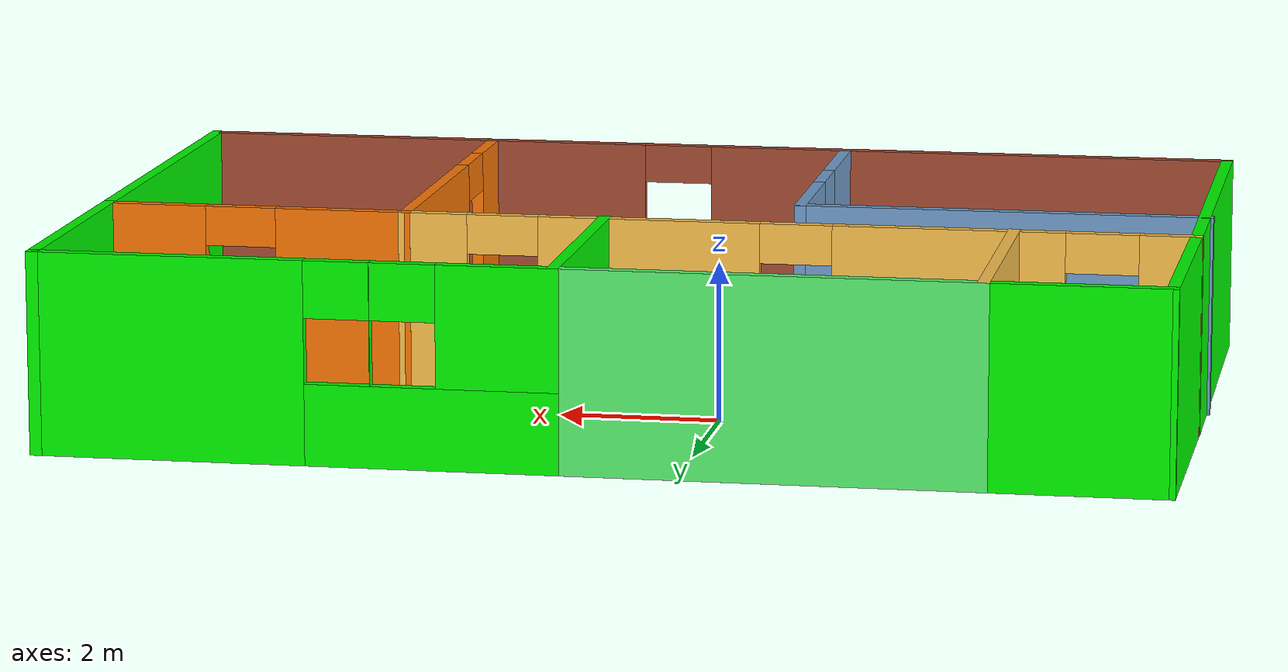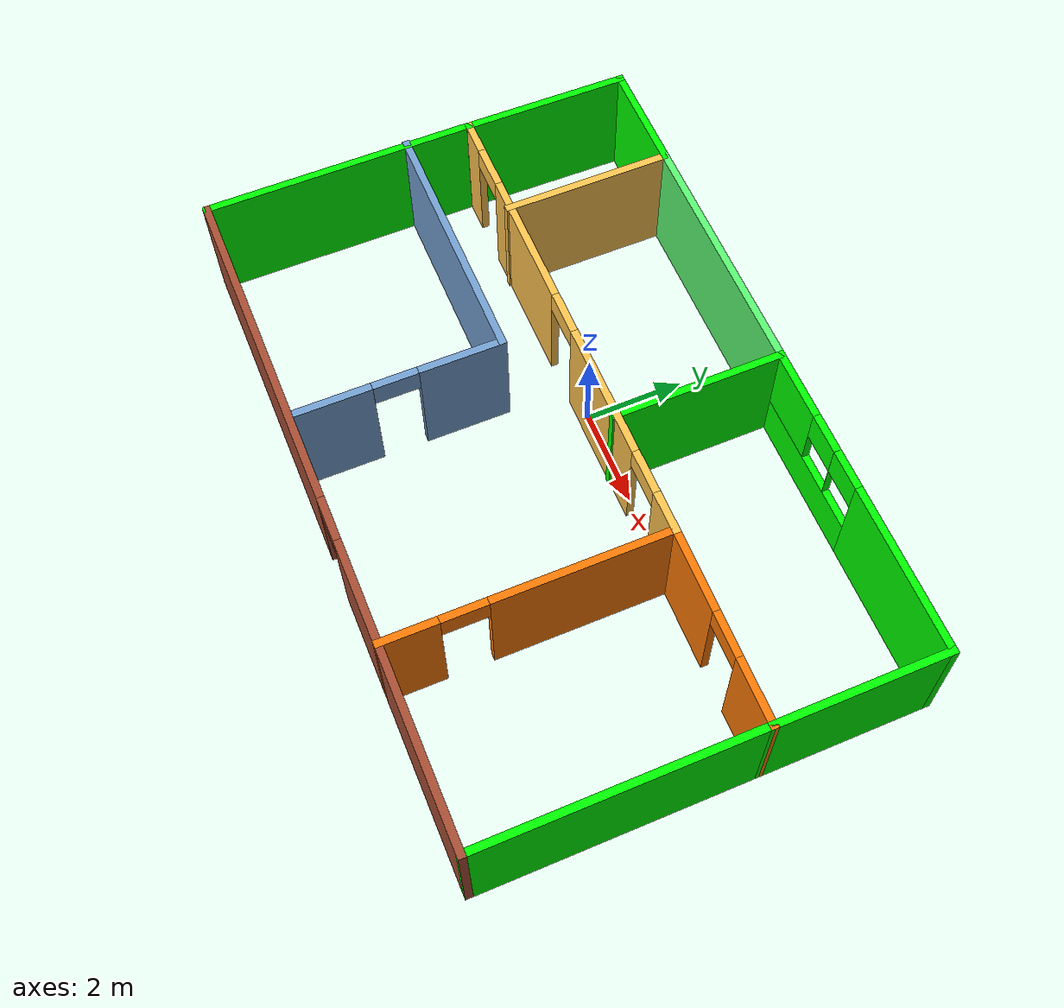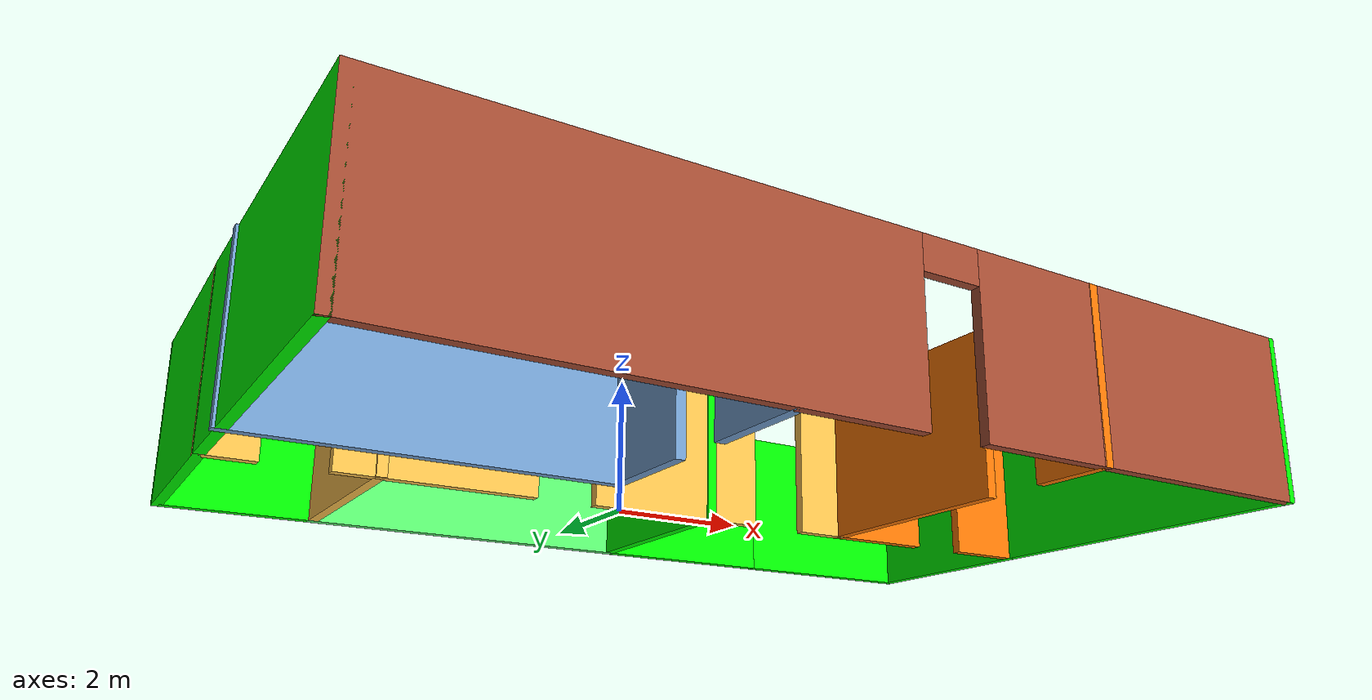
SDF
<?xml version='1.0'?>
<sdf version='1.7'>
  <model name='Building1'>
    <pose>0.962869 -1.20578 0 0 -0 0</pose>
    <link name='Wall_13'>
      <collision name='Wall_13_Collision'>
        <geometry>
          <box>
            <size>5.5 0.15 2.5</size>
          </box>
        </geometry>
        <pose>0 0 1.25 0 -0 0</pose>
      </collision>
      <visual name='Wall_13_Visual'>
        <pose>0 0 1.25 0 -0 0</pose>
        <geometry>
          <box>
            <size>5.5 0.15 2.5</size>
          </box>
        </geometry>
        <material>
          <script>
            <uri>file://media/materials/scripts/gazebo.material</uri>
            <name>Gazebo/Grey</name>
          </script>
          <ambient>0 1 0 1</ambient>
        </material>
        <meta>
          <layer>0</layer>
        </meta>
      </visual>
      <pose>-6.82544 -1.72548 0 0 -0 -1.5708</pose>
    </link>
    <link name='Wall_15'>
      <pose>-1.90044 -4.40048 0 0 -0 0</pose>
      <visual name='Wall_15_Visual_0'>
        <pose>-1.52945 0 1.25 0 -0 0</pose>
        <geometry>
          <box>
            <size>6.94109 0.15 2.5</size>
          </box>
        </geometry>
        <material>
          <script>
            <uri>file://media/materials/scripts/gazebo.material</uri>
            <name>Gazebo/Bricks</name>
          </script>
          <ambient>0 1 0 1</ambient>
        </material>
        <meta>
          <layer>0</layer>
        </meta>
      </visual>
      <collision name='Wall_15_Collision_0'>
        <geometry>
          <box>
            <size>6.94109 0.15 2.5</size>
          </box>
        </geometry>
        <pose>-1.52945 0 1.25 0 -0 0</pose>
      </collision>
      <visual name='Wall_15_Visual_1'>
        <pose>3.92055 0 1.25 0 -0 0</pose>
        <geometry>
          <box>
            <size>2.1589 0.15 2.5</size>
          </box>
        </geometry>
        <material>
          <script>
            <uri>file://media/materials/scripts/gazebo.material</uri>
            <name>Gazebo/Bricks</name>
          </script>
          <ambient>0 1 0 1</ambient>
        </material>
        <meta>
          <layer>0</layer>
        </meta>
      </visual>
      <collision name='Wall_15_Collision_1'>
        <geometry>
          <box>
            <size>2.1589 0.15 2.5</size>
          </box>
        </geometry>
        <pose>3.92055 0 1.25 0 -0 0</pose>
      </collision>
      <visual name='Wall_15_Visual_2'>
        <pose>2.39109 0 2.25 0 -0 0</pose>
        <geometry>
          <box>
            <size>0.9 0.15 0.5</size>
          </box>
        </geometry>
        <material>
          <script>
            <uri>file://media/materials/scripts/gazebo.material</uri>
            <name>Gazebo/Bricks</name>
          </script>
          <ambient>0 1 0 1</ambient>
        </material>
        <meta>
          <layer>0</layer>
        </meta>
      </visual>
      <collision name='Wall_15_Collision_2'>
        <geometry>
          <box>
            <size>0.9 0.15 0.5</size>
          </box>
        </geometry>
        <pose>2.39109 0 2.25 0 -0 0</pose>
      </collision>
    </link>
    <link name='Wall_16'>
      <pose>3.02456 -1.72548 0 0 -0 1.5708</pose>
      <visual name='Wall_16_Visual_0'>
        <pose>-2.16708 0 1.25 0 -0 0</pose>
        <geometry>
          <box>
            <size>1.16585 0.15 2.5</size>
          </box>
        </geometry>
        <material>
          <script>
            <uri>file://media/materials/scripts/gazebo.material</uri>
            <name>Gazebo/Grey</name>
          </script>
          <ambient>0.996078 0.47451 0.0196078 1</ambient>
        </material>
        <meta>
          <layer>0</layer>
        </meta>
      </visual>
      <collision name='Wall_16_Collision_0'>
        <geometry>
          <box>
            <size>1.16585 0.15 2.5</size>
          </box>
        </geometry>
        <pose>-2.16708 0 1.25 0 -0 0</pose>
      </collision>
      <visual name='Wall_16_Visual_1'>
        <pose>1.03293 0 1.25 0 -0 0</pose>
        <geometry>
          <box>
            <size>3.43415 0.15 2.5</size>
          </box>
        </geometry>
        <material>
          <script>
            <uri>file://media/materials/scripts/gazebo.material</uri>
            <name>Gazebo/Grey</name>
          </script>
          <ambient>0.996078 0.47451 0.0196078 1</ambient>
        </material>
        <meta>
          <layer>0</layer>
        </meta>
      </visual>
      <collision name='Wall_16_Collision_1'>
        <geometry>
          <box>
            <size>3.43415 0.15 2.5</size>
          </box>
        </geometry>
        <pose>1.03293 0 1.25 0 -0 0</pose>
      </collision>
      <visual name='Wall_16_Visual_2'>
        <pose>-1.13415 0 2.25 0 -0 0</pose>
        <geometry>
          <box>
            <size>0.9 0.15 0.5</size>
          </box>
        </geometry>
        <material>
          <script>
            <uri>file://media/materials/scripts/gazebo.material</uri>
            <name>Gazebo/Grey</name>
          </script>
          <ambient>0.996078 0.47451 0.0196078 1</ambient>
        </material>
        <meta>
          <layer>0</layer>
        </meta>
      </visual>
      <collision name='Wall_16_Collision_2'>
        <geometry>
          <box>
            <size>0.9 0.15 0.5</size>
          </box>
        </geometry>
        <pose>-1.13415 0 2.25 0 -0 0</pose>
      </collision>
    </link>
    <link name='Wall_27'>
      <pose>-1.7618 -2.28861 0 0 -0 -1.5708</pose>
      <visual name='Wall_27_Visual_0'>
        <pose>-1.2562 0 1.25 0 -0 0</pose>
        <geometry>
          <box>
            <size>1.7376 0.15 2.5</size>
          </box>
        </geometry>
        <material>
          <script>
            <uri>file://media/materials/scripts/gazebo.material</uri>
            <name>Gazebo/Grey</name>
          </script>
          <ambient>0.447059 0.623529 0.811765 1</ambient>
        </material>
        <meta>
          <layer>0</layer>
        </meta>
      </visual>
      <collision name='Wall_27_Collision_0'>
        <geometry>
          <box>
            <size>1.7376 0.15 2.5</size>
          </box>
        </geometry>
        <pose>-1.2562 0 1.25 0 -0 0</pose>
      </collision>
      <visual name='Wall_27_Visual_1'>
        <pose>1.3188 0 1.25 0 -0 0</pose>
        <geometry>
          <box>
            <size>1.6124 0.15 2.5</size>
          </box>
        </geometry>
        <material>
          <script>
            <uri>file://media/materials/scripts/gazebo.material</uri>
            <name>Gazebo/Grey</name>
          </script>
          <ambient>0.447059 0.623529 0.811765 1</ambient>
        </material>
        <meta>
          <layer>0</layer>
        </meta>
      </visual>
      <collision name='Wall_27_Collision_1'>
        <geometry>
          <box>
            <size>1.6124 0.15 2.5</size>
          </box>
        </geometry>
        <pose>1.3188 0 1.25 0 -0 0</pose>
      </collision>
      <visual name='Wall_27_Visual_2'>
        <pose>0.062597 0 2.25 0 -0 0</pose>
        <geometry>
          <box>
            <size>0.9 0.15 0.5</size>
          </box>
        </geometry>
        <material>
          <script>
            <uri>file://media/materials/scripts/gazebo.material</uri>
            <name>Gazebo/Grey</name>
          </script>
          <ambient>0.447059 0.623529 0.811765 1</ambient>
        </material>
        <meta>
          <layer>0</layer>
        </meta>
      </visual>
      <collision name='Wall_27_Collision_2'>
        <geometry>
          <box>
            <size>0.9 0.15 0.5</size>
          </box>
        </geometry>
        <pose>0.062597 0 2.25 0 -0 0</pose>
      </collision>
    </link>
    <link name='Wall_29'>
      <collision name='Wall_29_Collision'>
        <geometry>
          <box>
            <size>5.25 0.15 2.5</size>
          </box>
        </geometry>
        <pose>0 0 1.25 0 -0 0</pose>
      </collision>
      <visual name='Wall_29_Visual'>
        <pose>0 0 1.25 0 -0 0</pose>
        <geometry>
          <box>
            <size>5.25 0.15 2.5</size>
          </box>
        </geometry>
        <material>
          <script>
            <uri>file://media/materials/scripts/gazebo.material</uri>
            <name>Gazebo/Grey</name>
          </script>
          <ambient>0.447059 0.623529 0.811765 1</ambient>
        </material>
        <meta>
          <layer>0</layer>
        </meta>
      </visual>
      <pose>-4.3118 -0.238606 0 0 -0 3.14159</pose>
    </link>
    <link name='Wall_33'>
      <pose>-1.89541 1.08415 0 0 -0 0</pose>
      <visual name='Wall_33_Visual_0'>
        <pose>-4.61696 0 1.25 0 -0 0</pose>
        <geometry>
          <box>
            <size>0.766073 0.15 2.5</size>
          </box>
        </geometry>
        <material>
          <script>
            <uri>file://media/materials/scripts/gazebo.material</uri>
            <name>Gazebo/Grey</name>
          </script>
          <ambient>1 0.764706 0.305882 1</ambient>
        </material>
        <meta>
          <layer>0</layer>
        </meta>
      </visual>
      <collision name='Wall_33_Collision_0'>
        <geometry>
          <box>
            <size>0.766073 0.15 2.5</size>
          </box>
        </geometry>
        <pose>-4.61696 0 1.25 0 -0 0</pose>
      </collision>
      <visual name='Wall_33_Visual_1'>
        <pose>-1.89531 0 1.25 0 -0 0</pose>
        <geometry>
          <box>
            <size>2.87723 0.15 2.5</size>
          </box>
        </geometry>
        <material>
          <script>
            <uri>file://media/materials/scripts/gazebo.material</uri>
            <name>Gazebo/Grey</name>
          </script>
          <ambient>1 0.764706 0.305882 1</ambient>
        </material>
        <meta>
          <layer>0</layer>
        </meta>
      </visual>
      <collision name='Wall_33_Collision_1'>
        <geometry>
          <box>
            <size>2.87723 0.15 2.5</size>
          </box>
        </geometry>
        <pose>-1.89531 0 1.25 0 -0 0</pose>
      </collision>
      <visual name='Wall_33_Visual_2'>
        <pose>1.83536 0 1.25 0 -0 0</pose>
        <geometry>
          <box>
            <size>2.78413 0.15 2.5</size>
          </box>
        </geometry>
        <material>
          <script>
            <uri>file://media/materials/scripts/gazebo.material</uri>
            <name>Gazebo/Grey</name>
          </script>
          <ambient>1 0.764706 0.305882 1</ambient>
        </material>
        <meta>
          <layer>0</layer>
        </meta>
      </visual>
      <collision name='Wall_33_Collision_2'>
        <geometry>
          <box>
            <size>2.78413 0.15 2.5</size>
          </box>
        </geometry>
        <pose>1.83536 0 1.25 0 -0 0</pose>
      </collision>
      <visual name='Wall_33_Visual_3'>
        <pose>4.56371 0 1.25 0 -0 0</pose>
        <geometry>
          <box>
            <size>0.872571 0.15 2.5</size>
          </box>
        </geometry>
        <material>
          <script>
            <uri>file://media/materials/scripts/gazebo.material</uri>
            <name>Gazebo/Grey</name>
          </script>
          <ambient>1 0.764706 0.305882 1</ambient>
        </material>
        <meta>
          <layer>0</layer>
        </meta>
      </visual>
      <collision name='Wall_33_Collision_3'>
        <geometry>
          <box>
            <size>0.872571 0.15 2.5</size>
          </box>
        </geometry>
        <pose>4.56371 0 1.25 0 -0 0</pose>
      </collision>
      <visual name='Wall_33_Visual_4'>
        <pose>-3.78393 0 2.25 0 -0 0</pose>
        <geometry>
          <box>
            <size>0.9 0.15 0.5</size>
          </box>
        </geometry>
        <material>
          <script>
            <uri>file://media/materials/scripts/gazebo.material</uri>
            <name>Gazebo/Grey</name>
          </script>
          <ambient>1 0.764706 0.305882 1</ambient>
        </material>
        <meta>
          <layer>0</layer>
        </meta>
      </visual>
      <collision name='Wall_33_Collision_4'>
        <geometry>
          <box>
            <size>0.9 0.15 0.5</size>
          </box>
        </geometry>
        <pose>-3.78393 0 2.25 0 -0 0</pose>
      </collision>
      <visual name='Wall_33_Visual_5'>
        <pose>-0.006699 0 2.25 0 -0 0</pose>
        <geometry>
          <box>
            <size>0.9 0.15 0.5</size>
          </box>
        </geometry>
        <material>
          <script>
            <uri>file://media/materials/scripts/gazebo.material</uri>
            <name>Gazebo/Grey</name>
          </script>
          <ambient>1 0.764706 0.305882 1</ambient>
        </material>
        <meta>
          <layer>0</layer>
        </meta>
      </visual>
      <collision name='Wall_33_Collision_5'>
        <geometry>
          <box>
            <size>0.9 0.15 0.5</size>
          </box>
        </geometry>
        <pose>-0.006699 0 2.25 0 -0 0</pose>
      </collision>
      <visual name='Wall_33_Visual_6'>
        <pose>3.67743 0 2.25 0 -0 0</pose>
        <geometry>
          <box>
            <size>0.9 0.15 0.5</size>
          </box>
        </geometry>
        <material>
          <script>
            <uri>file://media/materials/scripts/gazebo.material</uri>
            <name>Gazebo/Grey</name>
          </script>
          <ambient>1 0.764706 0.305882 1</ambient>
        </material>
        <meta>
          <layer>0</layer>
        </meta>
      </visual>
      <collision name='Wall_33_Collision_6'>
        <geometry>
          <box>
            <size>0.9 0.15 0.5</size>
          </box>
        </geometry>
        <pose>3.67743 0 2.25 0 -0 0</pose>
      </collision>
    </link>
    <link name='Wall_35'>
      <collision name='Wall_35_Collision'>
        <geometry>
          <box>
            <size>3.9867 0.15 2.5</size>
          </box>
        </geometry>
        <pose>0 0 1.25 0 -0 0</pose>
      </collision>
      <visual name='Wall_35_Visual'>
        <pose>0 0 1.25 0 -0 0</pose>
        <geometry>
          <box>
            <size>3.9867 0.15 2.5</size>
          </box>
        </geometry>
        <material>
          <script>
            <uri>file://media/materials/scripts/gazebo.material</uri>
            <name>Gazebo/Bricks</name>
          </script>
          <ambient>0 1 0 1</ambient>
        </material>
        <meta>
          <layer>0</layer>
        </meta>
      </visual>
      <pose>4.94285 -4.40035 0 0 -0 6.9e-05</pose>
    </link>
    <link name='Wall_36'>
      <collision name='Wall_36_Collision'>
        <geometry>
          <box>
            <size>5.6 0.15 2.5</size>
          </box>
        </geometry>
        <pose>0 0 1.25 0 -0 0</pose>
      </collision>
      <visual name='Wall_36_Visual'>
        <pose>0 0 1.25 0 -0 0</pose>
        <geometry>
          <box>
            <size>5.6 0.15 2.5</size>
          </box>
        </geometry>
        <material>
          <script>
            <uri>file://media/materials/scripts/gazebo.material</uri>
            <name>Gazebo/Grey</name>
          </script>
          <ambient>0 1 0 1</ambient>
        </material>
        <meta>
          <layer>0</layer>
        </meta>
      </visual>
      <pose>6.86113 -1.67522 0 0 -0 1.5708</pose>
    </link>
    <link name='Wall_38'>
      <pose>4.94536 1.06696 0 0 -0 -0.008971</pose>
      <visual name='Wall_38_Visual_0'>
        <pose>-1.12654 0 1.25 0 -0 0</pose>
        <geometry>
          <box>
            <size>1.72862 0.15 2.5</size>
          </box>
        </geometry>
        <material>
          <script>
            <uri>file://media/materials/scripts/gazebo.material</uri>
            <name>Gazebo/Grey</name>
          </script>
          <ambient>0.996078 0.47451 0.0196078 1</ambient>
        </material>
        <meta>
          <layer>0</layer>
        </meta>
      </visual>
      <collision name='Wall_38_Collision_0'>
        <geometry>
          <box>
            <size>1.72862 0.15 2.5</size>
          </box>
        </geometry>
        <pose>-1.12654 0 1.25 0 -0 0</pose>
      </collision>
      <visual name='Wall_38_Visual_1'>
        <pose>1.31431 0 1.25 0 -0 0</pose>
        <geometry>
          <box>
            <size>1.35308 0.15 2.5</size>
          </box>
        </geometry>
        <material>
          <script>
            <uri>file://media/materials/scripts/gazebo.material</uri>
            <name>Gazebo/Grey</name>
          </script>
          <ambient>0.996078 0.47451 0.0196078 1</ambient>
        </material>
        <meta>
          <layer>0</layer>
        </meta>
      </visual>
      <collision name='Wall_38_Collision_1'>
        <geometry>
          <box>
            <size>1.35308 0.15 2.5</size>
          </box>
        </geometry>
        <pose>1.31431 0 1.25 0 -0 0</pose>
      </collision>
      <visual name='Wall_38_Visual_2'>
        <pose>0.18777 0 2.25 0 -0 0</pose>
        <geometry>
          <box>
            <size>0.9 0.15 0.5</size>
          </box>
        </geometry>
        <material>
          <script>
            <uri>file://media/materials/scripts/gazebo.material</uri>
            <name>Gazebo/Grey</name>
          </script>
          <ambient>0.996078 0.47451 0.0196078 1</ambient>
        </material>
        <meta>
          <layer>0</layer>
        </meta>
      </visual>
      <collision name='Wall_38_Collision_2'>
        <geometry>
          <box>
            <size>0.9 0.15 0.5</size>
          </box>
        </geometry>
        <pose>0.18777 0 2.25 0 -0 0</pose>
      </collision>
    </link>
    <link name='Wall_43'>
      <collision name='Wall_43_Collision'>
        <geometry>
          <box>
            <size>3.5 0.15 2.5</size>
          </box>
        </geometry>
        <pose>0 0 1.25 0 -0 0</pose>
      </collision>
      <visual name='Wall_43_Visual'>
        <pose>0 0 1.25 0 -0 0</pose>
        <geometry>
          <box>
            <size>3.5 0.15 2.5</size>
          </box>
        </geometry>
        <material>
          <script>
            <uri>file://media/materials/scripts/gazebo.material</uri>
            <name>Gazebo/Grey</name>
          </script>
          <ambient>0 1 0 1</ambient>
        </material>
        <meta>
          <layer>0</layer>
        </meta>
      </visual>
      <pose>6.86113 2.72478 0 0 -0 1.5708</pose>
    </link>
    <link name='Wall_44'>
      <pose>3.68613 4.39978 0 0 -0 3.14159</pose>
      <visual name='Wall_44_Visual_0'>
        <pose>-1.54778 0 1.25 0 -0 0</pose>
        <geometry>
          <box>
            <size>3.40444 0.15 2.5</size>
          </box>
        </geometry>
        <material>
          <script>
            <uri>file://media/materials/scripts/gazebo.material</uri>
            <name>Gazebo/Grey</name>
          </script>
          <ambient>0 1 0 1</ambient>
        </material>
        <meta>
          <layer>0</layer>
        </meta>
      </visual>
      <collision name='Wall_44_Collision_0'>
        <geometry>
          <box>
            <size>3.40444 0.15 2.5</size>
          </box>
        </geometry>
        <pose>-1.54778 0 1.25 0 -0 0</pose>
      </collision>
      <visual name='Wall_44_Visual_1'>
        <pose>1.70222 0 0.5 0 -0 0</pose>
        <geometry>
          <box>
            <size>3.09556 0.15 1</size>
          </box>
        </geometry>
        <material>
          <script>
            <uri>file://media/materials/scripts/gazebo.material</uri>
            <name>Gazebo/Grey</name>
          </script>
          <ambient>0 1 0 1</ambient>
        </material>
        <meta>
          <layer>0</layer>
        </meta>
      </visual>
      <collision name='Wall_44_Collision_1'>
        <geometry>
          <box>
            <size>3.09556 0.15 1</size>
          </box>
        </geometry>
        <pose>1.70222 0 0.5 0 -0 0</pose>
      </collision>
      <visual name='Wall_44_Visual_2'>
        <pose>0.956713 0 1.75 0 -0 0</pose>
        <geometry>
          <box>
            <size>0.004543 0.15 1.5</size>
          </box>
        </geometry>
        <material>
          <script>
            <uri>file://media/materials/scripts/gazebo.material</uri>
            <name>Gazebo/Grey</name>
          </script>
          <ambient>0 1 0 1</ambient>
        </material>
        <meta>
          <layer>0</layer>
        </meta>
      </visual>
      <collision name='Wall_44_Collision_2'>
        <geometry>
          <box>
            <size>0.004543 0.15 1.5</size>
          </box>
        </geometry>
        <pose>0.956713 0 1.75 0 -0 0</pose>
      </collision>
      <visual name='Wall_44_Visual_3'>
        <pose>2.50449 0 1.75 0 -0 0</pose>
        <geometry>
          <box>
            <size>1.49102 0.15 1.5</size>
          </box>
        </geometry>
        <material>
          <script>
            <uri>file://media/materials/scripts/gazebo.material</uri>
            <name>Gazebo/Grey</name>
          </script>
          <ambient>0 1 0 1</ambient>
        </material>
        <meta>
          <layer>0</layer>
        </meta>
      </visual>
      <collision name='Wall_44_Collision_3'>
        <geometry>
          <box>
            <size>1.49102 0.15 1.5</size>
          </box>
        </geometry>
        <pose>2.50449 0 1.75 0 -0 0</pose>
      </collision>
      <visual name='Wall_44_Visual_4'>
        <pose>0.554441 0 2.15 0 -0 0</pose>
        <geometry>
          <box>
            <size>0.8 0.15 0.7</size>
          </box>
        </geometry>
        <material>
          <script>
            <uri>file://media/materials/scripts/gazebo.material</uri>
            <name>Gazebo/Grey</name>
          </script>
          <ambient>0 1 0 1</ambient>
        </material>
        <meta>
          <layer>0</layer>
        </meta>
      </visual>
      <collision name='Wall_44_Collision_4'>
        <geometry>
          <box>
            <size>0.8 0.15 0.7</size>
          </box>
        </geometry>
        <pose>0.554441 0 2.15 0 -0 0</pose>
      </collision>
      <visual name='Wall_44_Visual_5'>
        <pose>1.35898 0 2.15 0 -0 0</pose>
        <geometry>
          <box>
            <size>0.8 0.15 0.7</size>
          </box>
        </geometry>
        <material>
          <script>
            <uri>file://media/materials/scripts/gazebo.material</uri>
            <name>Gazebo/Grey</name>
          </script>
          <ambient>0 1 0 1</ambient>
        </material>
        <meta>
          <layer>0</layer>
        </meta>
      </visual>
      <collision name='Wall_44_Collision_5'>
        <geometry>
          <box>
            <size>0.8 0.15 0.7</size>
          </box>
        </geometry>
        <pose>1.35898 0 2.15 0 -0 0</pose>
      </collision>
    </link>
    <link name='Wall_45'>
      <collision name='Wall_45_Collision'>
        <geometry>
          <box>
            <size>3.5 0.15 2.5</size>
          </box>
        </geometry>
        <pose>0 0 1.25 0 -0 0</pose>
      </collision>
      <visual name='Wall_45_Visual'>
        <pose>0 0 1.25 0 -0 0</pose>
        <geometry>
          <box>
            <size>3.5 0.15 2.5</size>
          </box>
        </geometry>
        <material>
          <script>
            <uri>file://media/materials/scripts/gazebo.material</uri>
            <name>Gazebo/Grey</name>
          </script>
          <ambient>0 1 0 1</ambient>
        </material>
        <meta>
          <layer>0</layer>
        </meta>
      </visual>
      <pose>0.511131 2.72478 0 0 -0 -1.5708</pose>
    </link>
    <link name='Wall_47'>
      <collision name='Wall_47_Collision'>
        <geometry>
          <box>
            <size>5.25 0.15 2.5</size>
          </box>
        </geometry>
        <pose>0 0 1.25 0 -0 0</pose>
      </collision>
      <visual name='Wall_47_Visual'>
        <pose>0 0 1.25 0 -0 0</pose>
        <geometry>
          <box>
            <size>5.25 0.15 2.5</size>
          </box>
        </geometry>
        <material>
          <script>
            <uri>file://media/materials/scripts/gazebo.material</uri>
            <name>Gazebo/Grey</name>
          </script>
          <ambient>0.352941 0.968627 0.439216 1</ambient>
        </material>
        <meta>
          <layer>0</layer>
        </meta>
      </visual>
      <pose>-2.03887 4.39978 0 0 -0 3.14159</pose>
    </link>
    <link name='Wall_48'>
      <collision name='Wall_48_Collision'>
        <geometry>
          <box>
            <size>3.5 0.15 2.5</size>
          </box>
        </geometry>
        <pose>0 0 1.25 0 -0 0</pose>
      </collision>
      <visual name='Wall_48_Visual'>
        <pose>0 0 1.25 0 -0 0</pose>
        <geometry>
          <box>
            <size>3.5 0.15 2.5</size>
          </box>
        </geometry>
        <material>
          <script>
            <uri>file://media/materials/scripts/gazebo.material</uri>
            <name>Gazebo/Grey</name>
          </script>
          <ambient>1 0.764706 0.305882 1</ambient>
        </material>
        <meta>
          <layer>0</layer>
        </meta>
      </visual>
      <pose>-4.58887 2.72478 0 0 -0 -1.5708</pose>
    </link>
    <link name='Wall_50'>
      <collision name='Wall_50_Collision'>
        <geometry>
          <box>
            <size>2.35 0.15 2.5</size>
          </box>
        </geometry>
        <pose>0 0 1.25 0 -0 0</pose>
      </collision>
      <visual name='Wall_50_Visual'>
        <pose>0 0 1.25 0 -0 0</pose>
        <geometry>
          <box>
            <size>2.35 0.15 2.5</size>
          </box>
        </geometry>
        <material>
          <script>
            <uri>file://media/materials/scripts/gazebo.material</uri>
            <name>Gazebo/Grey</name>
          </script>
          <ambient>0 1 0 1</ambient>
        </material>
        <meta>
          <layer>0</layer>
        </meta>
      </visual>
      <pose>-5.68887 4.39978 0 0 -0 3.14159</pose>
    </link>
    <link name='Wall_52'>
      <collision name='Wall_52_Collision'>
        <geometry>
          <box>
            <size>3.46578 0.15 2.5</size>
          </box>
        </geometry>
        <pose>0 0 1.25 0 -0 0</pose>
      </collision>
      <visual name='Wall_52_Visual'>
        <pose>0 0 1.25 0 -0 0</pose>
        <geometry>
          <box>
            <size>3.46578 0.15 2.5</size>
          </box>
        </geometry>
        <material>
          <script>
            <uri>file://media/materials/scripts/gazebo.material</uri>
            <name>Gazebo/Grey</name>
          </script>
          <ambient>0 1 0 1</ambient>
        </material>
        <meta>
          <layer>0</layer>
        </meta>
      </visual>
      <pose>-6.80464 2.74196 0 0 -0 -1.58031</pose>
    </link>
    <static>1</static>
  </model>
</sdf>
